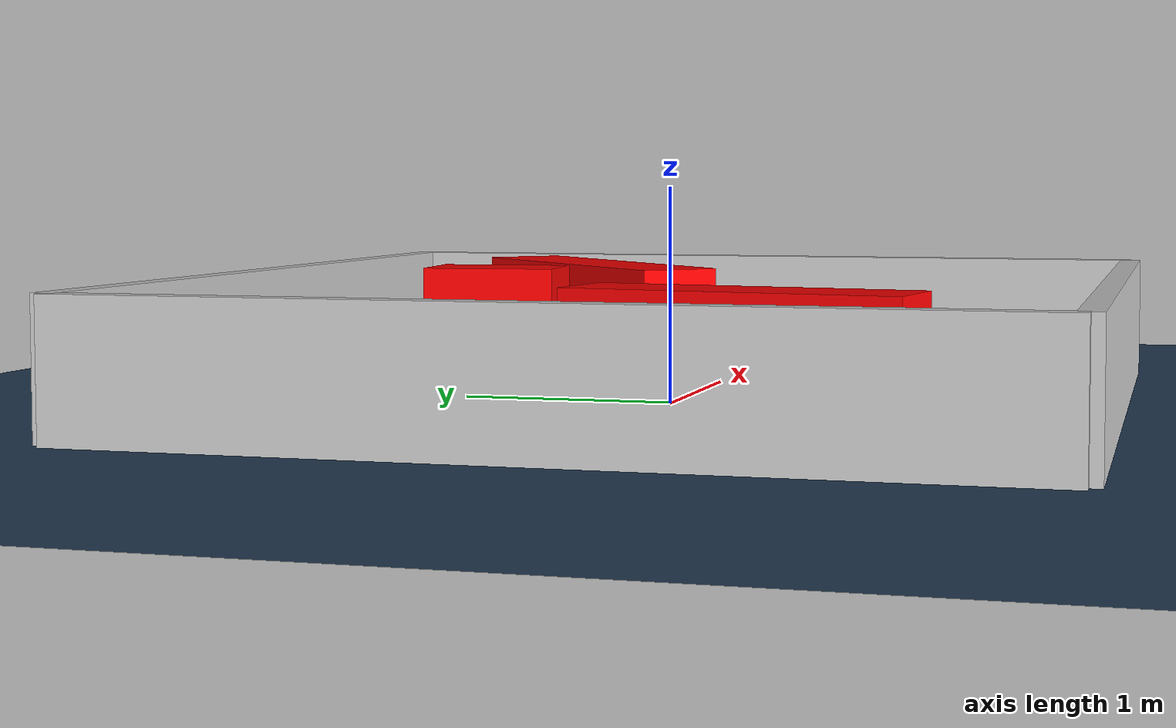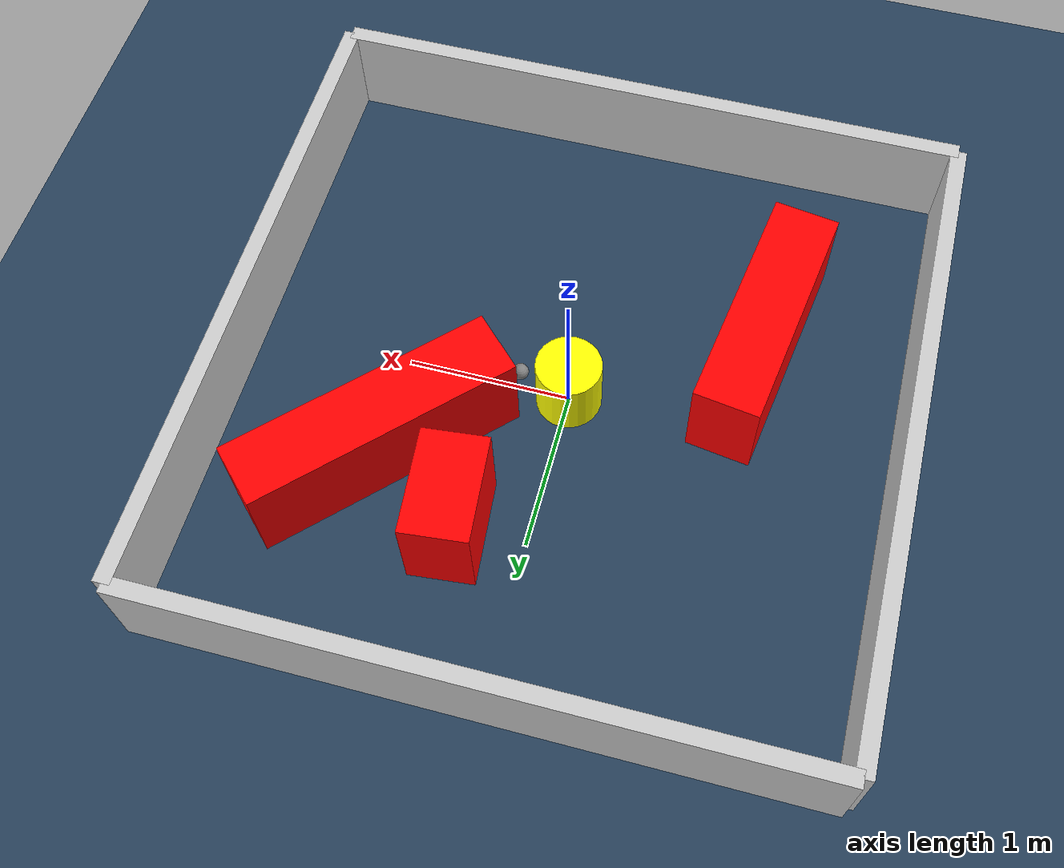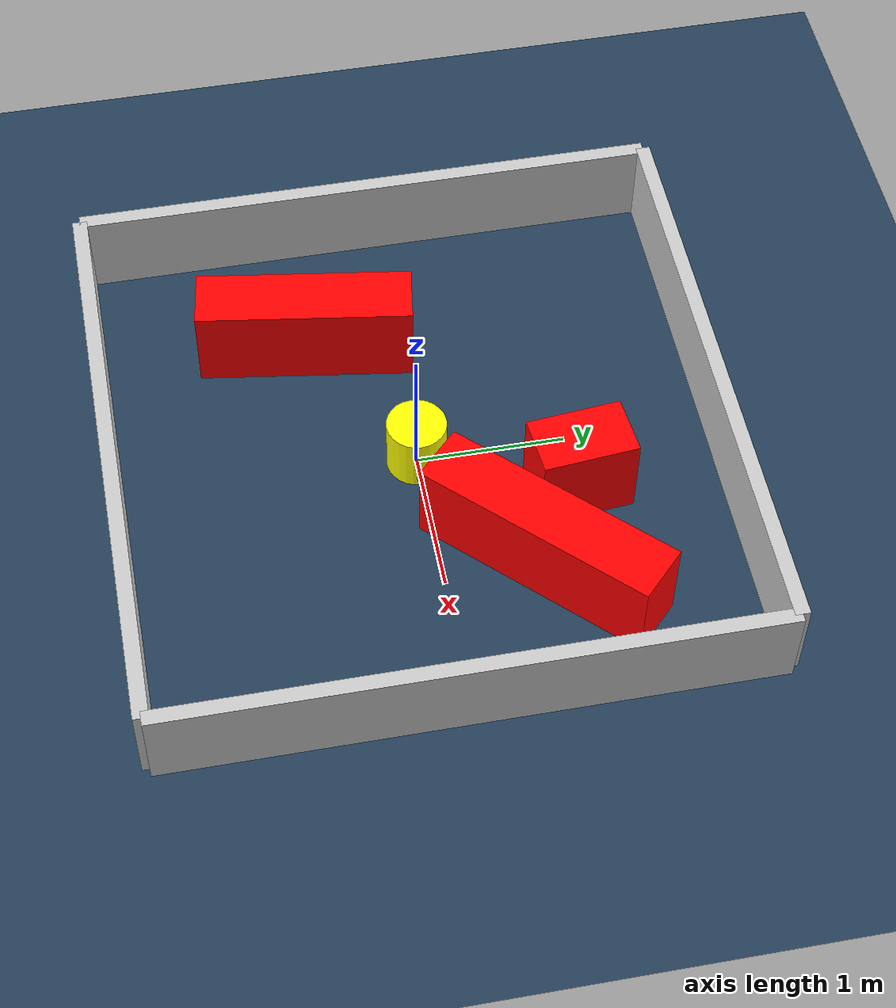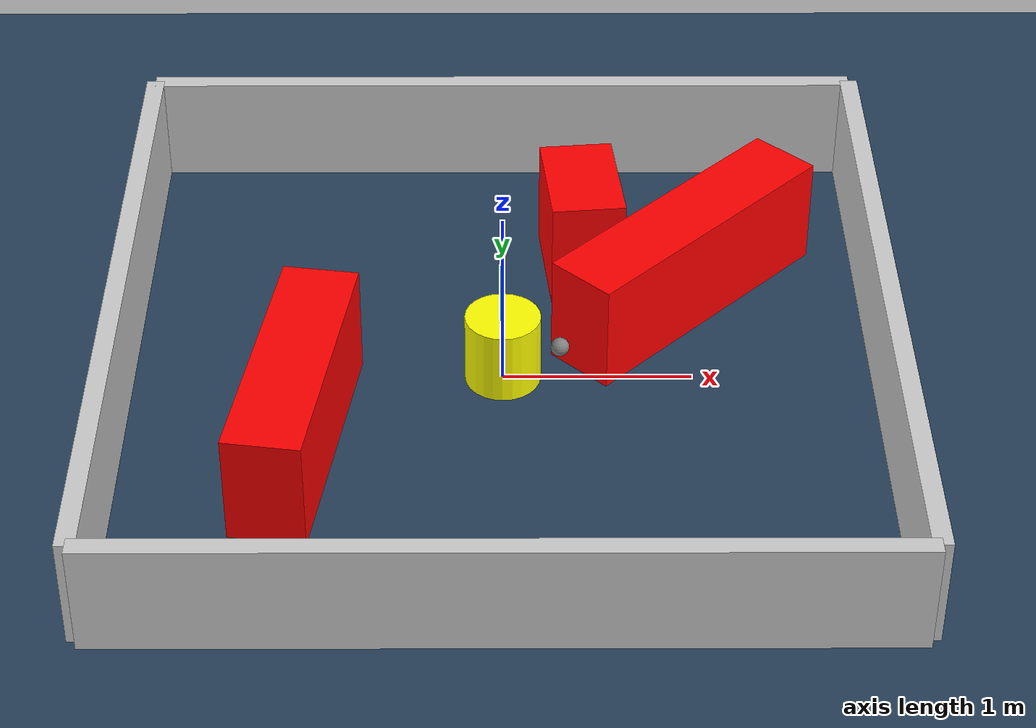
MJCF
<?xml version="1.0" ?>
<mujoco model="generated_environment">
  <option timestep="0.01" integrator="RK4" cone="elliptic"/>
  <default>
    <geom density="1"/>
  </default>
  <asset>
    <texture builtin="gradient" height="3072" rgb1="0.3 0.5 0.7" rgb2="0 0 0" type="skybox" width="512"/>
    <texture builtin="checker" height="300" mark="edge" markrgb="0.8 0.8 0.8" name="groundplane" rgb1="0.2 0.3 0.4" rgb2="0.1 0.2 0.3" type="2d" width="300"/>
    <material name="groundplane" reflectance="0.2" texrepeat="5 5" texture="groundplane" texuniform="true"/>
    <material name="robot" rgba="0.0 1.0 0.0 1"/>
  </asset>
  <worldbody>
    <light dir="0 0 -1" directional="true" pos="0 0 1.5"/>
    <geom condim="4" friction="1.0 0.005 0.001" material="groundplane" name="floor" size="0 0 0.05" type="plane"/>
    <body name="walls">
      <geom name="wall_1" condim="4" pos="-2.0 0.0 0.3" rgba="0.800000011920929 0.800000011920929 0.800000011920929 1.0" size="0.05 2.0 0.3" type="box"/>
      <geom name="wall_2" condim="4" pos="2.0 0.0 0.3" rgba="0.800000011920929 0.800000011920929 0.800000011920929 1.0" size="0.05 2.0 0.3" type="box"/>
      <geom name="wall_3" condim="4" pos="0.0 -2.0 0.3" rgba="0.800000011920929 0.800000011920929 0.800000011920929 1.0" size="2.0 0.05 0.3" type="box"/>
      <geom name="wall_4" condim="4" pos="0.0 2.0 0.3" rgba="0.800000011920929 0.800000011920929 0.800000011920929 1.0" size="2.0 0.05 0.3" type="box"/>
    </body>
    <body name="robot">
      <joint name="joint_x" type="slide" pos="0 0 0" axis="1 0 0"/>
      <joint name="joint_y" type="slide" pos="0 0 0" axis="0 1 0"/>
      <geom name="robot" type="sphere" pos="0.3 0.0 0.2" size="0.05" mass="5." friction="1.0 0.005 0.0001" condim="4" rgba="0.5 0.5 0.5 1.0"/>
      <site name="sensor_ball"/>
    </body>
    <body name="obstacle_movable_1">
      <geom name="obstacle_movable_1" condim="4" pos="0.0 0.0 0.2" euler="0 0 0.0" friction="1.0 0.005 0.001" rgba="1.0 1.0 0.0 1.0" size="0.2 0.2 0.0" type="cylinder" mass="0.1"/>
      <joint type="free"/>
    </body>
    <body name="obstacle_2_static">
      <geom name="obstacle_2_static" condim="4" pos="0.4368254004773484 1.0025815590509126 0.3" euler="0 0 95.56365900995652" friction="1.0 0.005 0.001" rgba="1 0 0 1" size="0.319532605055901 0.2 0.3" type="box"/>
    </body>
    <body name="obstacle_3_static">
      <geom name="obstacle_3_static" condim="4" pos="-1.053866628613507 -0.5779644630154677 0.3" euler="0 0 81.47044916558923" friction="1.0 0.005 0.001" rgba="1 0 0 1" size="0.7278793023077467 0.2 0.3" type="box"/>
    </body>
    <body name="obstacle_4_static">
      <geom name="obstacle_4_static" condim="4" pos="0.9854902674998014 0.6545621249385485 0.3" euler="0 0 225.62335174858103" friction="1.0 0.005 0.001" rgba="1 0 0 1" size="0.835522795355014 0.2 0.3" type="box"/>
    </body>
  </worldbody>
  <actuator>
    <motor name="actuator_x" joint="joint_x" gear="1" ctrlrange="-1 1"/>
    <motor name="actuator_y" joint="joint_y" gear="1" ctrlrange="-1 1"/>
  </actuator>
</mujoco>
